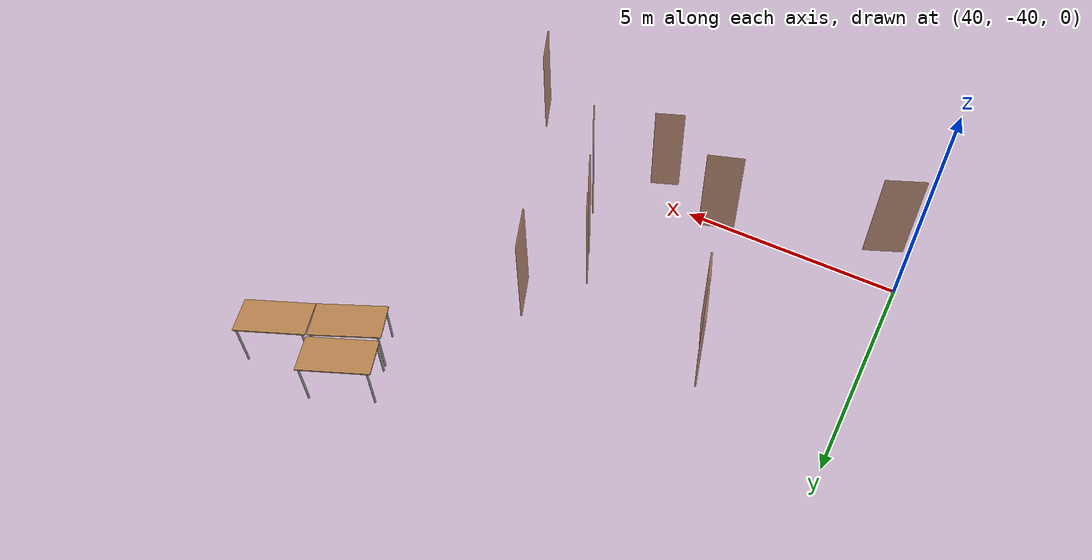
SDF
<sdf version="1.6">
 <world name="world">
  <model name="OpenRobotics/Table_3">
   <static>1</static>
   <link name="link">
    <collision name="surface">
     <pose>0 0 1 0 -0 0</pose>
     <geometry><box><size>1.5 0.8 0.03</size></box></geometry>
     <surface><friction><ode><mu>0.6</mu><mu2>0.6</mu2></ode></friction></surface>
    </collision>
    <visual name="visual1">
     <pose>0 0 1 0 -0 0</pose>
     <geometry><box><size>1.5 0.8 0.03</size></box></geometry>
     <material>
      <script><uri>file://media/materials/scripts/gazebo.material</uri><name>Gazebo/Wood</name></script>
     </material>
    </visual>
    <collision name="front_left_leg">
     <pose>0.68 0.38 0.5 0 -0 0</pose>
     <geometry><cylinder><radius>0.02</radius><length>1</length></cylinder></geometry>
    </collision>
    <visual name="front_left_leg">
     <pose>0.68 0.38 0.5 0 -0 0</pose>
     <geometry><cylinder><radius>0.02</radius><length>1</length></cylinder></geometry>
     <material>
      <script><uri>file://media/materials/scripts/gazebo.material</uri><name>Gazebo/Grey</name></script>
     </material>
    </visual>
    <collision name="front_right_leg">
     <pose>0.68 -0.38 0.5 0 -0 0</pose>
     <geometry><cylinder><radius>0.02</radius><length>1</length></cylinder></geometry>
    </collision>
    <visual name="front_right_leg">
     <pose>0.68 -0.38 0.5 0 -0 0</pose>
     <geometry><cylinder><radius>0.02</radius><length>1</length></cylinder></geometry>
     <material>
      <script><uri>file://media/materials/scripts/gazebo.material</uri><name>Gazebo/Grey</name></script>
     </material>
    </visual>
    <collision name="back_right_leg">
     <pose>-0.68 -0.38 0.5 0 -0 0</pose>
     <geometry><cylinder><radius>0.02</radius><length>1</length></cylinder></geometry>
    </collision>
    <visual name="back_right_leg">
     <pose>-0.68 -0.38 0.5 0 -0 0</pose>
     <geometry><cylinder><radius>0.02</radius><length>1</length></cylinder></geometry>
     <material>
      <script><uri>file://media/materials/scripts/gazebo.material</uri><name>Gazebo/Grey</name></script>
     </material>
    </visual>
    <collision name="back_left_leg">
     <pose>-0.68 0.38 0.5 0 -0 0</pose>
     <geometry><cylinder><radius>0.02</radius><length>1</length></cylinder></geometry>
    </collision>
    <visual name="back_left_leg">
     <pose>-0.68 0.38 0.5 0 -0 0</pose>
     <geometry><cylinder><radius>0.02</radius><length>1</length></cylinder></geometry>
     <material>
      <script><uri>file://media/materials/scripts/gazebo.material</uri><name>Gazebo/Grey</name></script>
     </material>
    </visual>
   </link>
   <pose>49.1187 -32.1514 0 0 -0 0.4303</pose>
  </model>
  <model name="OpenRobotics/Table_7">
   <static>1</static>
   <link name="link">
    <collision name="surface">
     <pose>0 0 1 0 -0 0</pose>
     <geometry><box><size>1.5 0.8 0.03</size></box></geometry>
     <surface><friction><ode><mu>0.6</mu><mu2>0.6</mu2></ode></friction></surface>
    </collision>
    <visual name="visual1">
     <pose>0 0 1 0 -0 0</pose>
     <geometry><box><size>1.5 0.8 0.03</size></box></geometry>
     <material>
      <script><uri>file://media/materials/scripts/gazebo.material</uri><name>Gazebo/Wood</name></script>
     </material>
    </visual>
    <collision name="front_left_leg">
     <pose>0.68 0.38 0.5 0 -0 0</pose>
     <geometry><cylinder><radius>0.02</radius><length>1</length></cylinder></geometry>
    </collision>
    <visual name="front_left_leg">
     <pose>0.68 0.38 0.5 0 -0 0</pose>
     <geometry><cylinder><radius>0.02</radius><length>1</length></cylinder></geometry>
     <material>
      <script><uri>file://media/materials/scripts/gazebo.material</uri><name>Gazebo/Grey</name></script>
     </material>
    </visual>
    <collision name="front_right_leg">
     <pose>0.68 -0.38 0.5 0 -0 0</pose>
     <geometry><cylinder><radius>0.02</radius><length>1</length></cylinder></geometry>
    </collision>
    <visual name="front_right_leg">
     <pose>0.68 -0.38 0.5 0 -0 0</pose>
     <geometry><cylinder><radius>0.02</radius><length>1</length></cylinder></geometry>
     <material>
      <script><uri>file://media/materials/scripts/gazebo.material</uri><name>Gazebo/Grey</name></script>
     </material>
    </visual>
    <collision name="back_right_leg">
     <pose>-0.68 -0.38 0.5 0 -0 0</pose>
     <geometry><cylinder><radius>0.02</radius><length>1</length></cylinder></geometry>
    </collision>
    <visual name="back_right_leg">
     <pose>-0.68 -0.38 0.5 0 -0 0</pose>
     <geometry><cylinder><radius>0.02</radius><length>1</length></cylinder></geometry>
     <material>
      <script><uri>file://media/materials/scripts/gazebo.material</uri><name>Gazebo/Grey</name></script>
     </material>
    </visual>
    <collision name="back_left_leg">
     <pose>-0.68 0.38 0.5 0 -0 0</pose>
     <geometry><cylinder><radius>0.02</radius><length>1</length></cylinder></geometry>
    </collision>
    <visual name="back_left_leg">
     <pose>-0.68 0.38 0.5 0 -0 0</pose>
     <geometry><cylinder><radius>0.02</radius><length>1</length></cylinder></geometry>
     <material>
      <script><uri>file://media/materials/scripts/gazebo.material</uri><name>Gazebo/Grey</name></script>
     </material>
    </visual>
   </link>
   <pose>50.8587 -32.2821 0 0 -0 0.4288</pose>
  </model>
  <model name="OpenRobotics/Table_8">
   <static>1</static>
   <link name="link">
    <collision name="surface">
     <pose>0 0 1 0 -0 0</pose>
     <geometry><box><size>1.5 0.8 0.03</size></box></geometry>
     <surface><friction><ode><mu>0.6</mu><mu2>0.6</mu2></ode></friction></surface>
    </collision>
    <visual name="visual1">
     <pose>0 0 1 0 -0 0</pose>
     <geometry><box><size>1.5 0.8 0.03</size></box></geometry>
     <material>
      <script><uri>file://media/materials/scripts/gazebo.material</uri><name>Gazebo/Wood</name></script>
     </material>
    </visual>
    <collision name="front_left_leg">
     <pose>0.68 0.38 0.5 0 -0 0</pose>
     <geometry><cylinder><radius>0.02</radius><length>1</length></cylinder></geometry>
    </collision>
    <visual name="front_left_leg">
     <pose>0.68 0.38 0.5 0 -0 0</pose>
     <geometry><cylinder><radius>0.02</radius><length>1</length></cylinder></geometry>
     <material>
      <script><uri>file://media/materials/scripts/gazebo.material</uri><name>Gazebo/Grey</name></script>
     </material>
    </visual>
    <collision name="front_right_leg">
     <pose>0.68 -0.38 0.5 0 -0 0</pose>
     <geometry><cylinder><radius>0.02</radius><length>1</length></cylinder></geometry>
    </collision>
    <visual name="front_right_leg">
     <pose>0.68 -0.38 0.5 0 -0 0</pose>
     <geometry><cylinder><radius>0.02</radius><length>1</length></cylinder></geometry>
     <material>
      <script><uri>file://media/materials/scripts/gazebo.material</uri><name>Gazebo/Grey</name></script>
     </material>
    </visual>
    <collision name="back_right_leg">
     <pose>-0.68 -0.38 0.5 0 -0 0</pose>
     <geometry><cylinder><radius>0.02</radius><length>1</length></cylinder></geometry>
    </collision>
    <visual name="back_right_leg">
     <pose>-0.68 -0.38 0.5 0 -0 0</pose>
     <geometry><cylinder><radius>0.02</radius><length>1</length></cylinder></geometry>
     <material>
      <script><uri>file://media/materials/scripts/gazebo.material</uri><name>Gazebo/Grey</name></script>
     </material>
    </visual>
    <collision name="back_left_leg">
     <pose>-0.68 0.38 0.5 0 -0 0</pose>
     <geometry><cylinder><radius>0.02</radius><length>1</length></cylinder></geometry>
    </collision>
    <visual name="back_left_leg">
     <pose>-0.68 0.38 0.5 0 -0 0</pose>
     <geometry><cylinder><radius>0.02</radius><length>1</length></cylinder></geometry>
     <material>
      <script><uri>file://media/materials/scripts/gazebo.material</uri><name>Gazebo/Grey</name></script>
     </material>
    </visual>
   </link>
   <pose>49.4808 -32.9359 0 0 -0 0.4547</pose>
  </model>
  <model name="D1">
   <pose>46.734 -38.1165 0 0 -0 -1.09898</pose>
   <link name="right">
    <pose>0 0 1.11 0 -0 0</pose>
    <visual name="right_visual">
     <geometry><box><size>0.995473 0.03 2.2</size></box></geometry>
     <material><ambient>0.5 0.25 0 0.6</ambient><diffuse>0.5 0.25 0 0.6</diffuse></material>
    </visual>
    <collision name="right_collision">
     <geometry><box><size>0.995473 0.03 2.2</size></box></geometry>
     <surface><contact><collide_bitmask>2</collide_bitmask></contact></surface>
    </collision>
    <inertial>
     <mass>50</mass>
     <inertia><ixx>20.1704</ixx><iyy>24.2957</iyy><izz>4.13277</izz><ixy>0</ixy><ixz>0</ixz><iyz>0</iyz></inertia>
    </inertial>
   </link>
   <joint name="right_joint" type="revolute">
    <parent>world</parent>
    <child>right</child>
    <axis>
     <xyz>0 0 1</xyz>
     <limit><lower>0</lower><upper>1.57</upper></limit>
     <dynamics><spring_reference>0</spring_reference><spring_stiffness>0</spring_stiffness></dynamics>
     <use_parent_model_frame>0</use_parent_model_frame>
    </axis>
    <pose>0.502736 0 0 0 -0 0</pose>
   </joint>
   <plugin name="door_D1" filename="libdoor.so">
    <v_max_door>0.5</v_max_door>
    <a_max_door>0.3</a_max_door>
    <a_nom_door>0.15</a_nom_door>
    <dx_min_door>0.01</dx_min_door>
    <f_max_door>500.0</f_max_door>
    <door name="D1" type="SwingDoor" left_joint_name="empty_joint" right_joint_name="right_joint"/>
   </plugin>
  </model>
  <model name="D2">
   <pose>40.5795 -41.0884 0 0 0 -2.71335</pose>
   <link name="right">
    <pose>0 0 1.11 0 -0 0</pose>
    <visual name="right_visual">
     <geometry><box><size>0.922305 0.03 2.2</size></box></geometry>
     <material><ambient>0.5 0.25 0 0.6</ambient><diffuse>0.5 0.25 0 0.6</diffuse></material>
    </visual>
    <collision name="right_collision">
     <geometry><box><size>0.922305 0.03 2.2</size></box></geometry>
     <surface><contact><collide_bitmask>2</collide_bitmask></contact></surface>
    </collision>
    <inertial>
     <mass>50</mass>
     <inertia><ixx>20.1704</ixx><iyy>23.711</iyy><izz>3.54811</izz><ixy>0</ixy><ixz>0</ixz><iyz>0</iyz></inertia>
    </inertial>
   </link>
   <joint name="right_joint" type="revolute">
    <parent>world</parent>
    <child>right</child>
    <axis>
     <xyz>0 0 1</xyz>
     <limit><lower>0</lower><upper>1.57</upper></limit>
     <dynamics><spring_reference>0</spring_reference><spring_stiffness>0</spring_stiffness></dynamics>
     <use_parent_model_frame>0</use_parent_model_frame>
    </axis>
    <pose>0.466153 0 0 0 -0 0</pose>
   </joint>
   <plugin name="door_D2" filename="libdoor.so">
    <v_max_door>0.5</v_max_door>
    <a_max_door>0.3</a_max_door>
    <a_nom_door>0.15</a_nom_door>
    <dx_min_door>0.01</dx_min_door>
    <f_max_door>500.0</f_max_door>
    <door name="D2" type="SwingDoor" left_joint_name="empty_joint" right_joint_name="right_joint"/>
   </plugin>
  </model>
  <model name="D3">
   <pose>44.2806 -39.9356 -0 0 0 -2.80852</pose>
   <link name="right">
    <pose>0 0 1.11 0 -0 0</pose>
    <visual name="right_visual">
     <geometry><box><size>0.838853 0.03 2.2</size></box></geometry>
     <material><ambient>0.5 0.25 0 0.6</ambient><diffuse>0.5 0.25 0 0.6</diffuse></material>
    </visual>
    <collision name="right_collision">
     <geometry><box><size>0.838853 0.03 2.2</size></box></geometry>
     <surface><contact><collide_bitmask>2</collide_bitmask></contact></surface>
    </collision>
    <inertial>
     <mass>50</mass>
     <inertia><ixx>20.1704</ixx><iyy>23.0986</iyy><izz>2.93572</izz><ixy>0</ixy><ixz>0</ixz><iyz>0</iyz></inertia>
    </inertial>
   </link>
   <joint name="right_joint" type="revolute">
    <parent>world</parent>
    <child>right</child>
    <axis>
     <xyz>0 0 1</xyz>
     <limit><lower>0</lower><upper>1.57</upper></limit>
     <dynamics><spring_reference>0</spring_reference><spring_stiffness>0</spring_stiffness></dynamics>
     <use_parent_model_frame>0</use_parent_model_frame>
    </axis>
    <pose>0.424426 0 0 0 -0 0</pose>
   </joint>
   <plugin name="door_D3" filename="libdoor.so">
    <v_max_door>0.5</v_max_door>
    <a_max_door>0.3</a_max_door>
    <a_nom_door>0.15</a_nom_door>
    <dx_min_door>0.01</dx_min_door>
    <f_max_door>500.0</f_max_door>
    <door name="D3" type="SwingDoor" left_joint_name="empty_joint" right_joint_name="right_joint"/>
   </plugin>
  </model>
  <model name="D4">
   <pose>46.2677 -37.1758 -0 0 0 -1.0969</pose>
   <link name="right">
    <pose>0 0 1.11 0 -0 0</pose>
    <visual name="right_visual">
     <geometry><box><size>0.672919 0.03 2.2</size></box></geometry>
     <material><ambient>0.5 0.25 0 0.6</ambient><diffuse>0.5 0.25 0 0.6</diffuse></material>
    </visual>
    <collision name="right_collision">
     <geometry><box><size>0.672919 0.03 2.2</size></box></geometry>
     <surface><contact><collide_bitmask>2</collide_bitmask></contact></surface>
    </collision>
    <inertial>
     <mass>50</mass>
     <inertia><ixx>20.1704</ixx><iyy>22.0534</iyy><izz>1.8905</izz><ixy>0</ixy><ixz>0</ixz><iyz>0</iyz></inertia>
    </inertial>
   </link>
   <joint name="right_joint" type="revolute">
    <parent>world</parent>
    <child>right</child>
    <axis>
     <xyz>0 0 1</xyz>
     <limit><lower>0</lower><upper>1.57</upper></limit>
     <dynamics><spring_reference>0</spring_reference><spring_stiffness>0</spring_stiffness></dynamics>
     <use_parent_model_frame>0</use_parent_model_frame>
    </axis>
    <pose>0.34146 0 0 0 -0 0</pose>
   </joint>
   <plugin name="door_D4" filename="libdoor.so">
    <v_max_door>0.5</v_max_door>
    <a_max_door>0.3</a_max_door>
    <a_nom_door>0.15</a_nom_door>
    <dx_min_door>0.01</dx_min_door>
    <f_max_door>500.0</f_max_door>
    <door name="D4" type="SwingDoor" left_joint_name="empty_joint" right_joint_name="right_joint"/>
   </plugin>
  </model>
  <model name="D5">
   <pose>47.1461 -35.8918 0 0 -0 -1.15391</pose>
   <link name="right">
    <pose>0 0 1.11 0 -0 0</pose>
    <visual name="right_visual">
     <geometry><box><size>1.10714 0.03 2.2</size></box></geometry>
     <material><ambient>0.5 0.25 0 0.6</ambient><diffuse>0.5 0.25 0 0.6</diffuse></material>
    </visual>
    <collision name="right_collision">
     <geometry><box><size>1.10714 0.03 2.2</size></box></geometry>
     <surface><contact><collide_bitmask>2</collide_bitmask></contact></surface>
    </collision>
    <inertial>
     <mass>50</mass>
     <inertia><ixx>20.1704</ixx><iyy>25.274</iyy><izz>5.11105</izz><ixy>0</ixy><ixz>0</ixz><iyz>0</iyz></inertia>
    </inertial>
   </link>
   <joint name="right_joint" type="revolute">
    <parent>world</parent>
    <child>right</child>
    <axis>
     <xyz>0 0 -1</xyz>
     <limit><lower>0</lower><upper>1.57</upper></limit>
     <dynamics><spring_reference>0</spring_reference><spring_stiffness>0</spring_stiffness></dynamics>
     <use_parent_model_frame>0</use_parent_model_frame>
    </axis>
    <pose>0.558568 0 0 0 -0 0</pose>
   </joint>
   <plugin name="door_D5" filename="libdoor.so">
    <v_max_door>0.5</v_max_door>
    <a_max_door>0.3</a_max_door>
    <a_nom_door>0.15</a_nom_door>
    <dx_min_door>0.01</dx_min_door>
    <f_max_door>500.0</f_max_door>
    <door name="D5" type="SwingDoor" left_joint_name="empty_joint" right_joint_name="right_joint"/>
   </plugin>
  </model>
  <model name="D6">
   <pose>49.9364 -41.6614 -0 0 -0 -1.13197</pose>
   <link name="right">
    <pose>0 0 1.11 0 -0 0</pose>
    <visual name="right_visual">
     <geometry><box><size>1.18487 0.03 2.2</size></box></geometry>
     <material><ambient>0.5 0.25 0 0.6</ambient><diffuse>0.5 0.25 0 0.6</diffuse></material>
    </visual>
    <collision name="right_collision">
     <geometry><box><size>1.18487 0.03 2.2</size></box></geometry>
     <surface><contact><collide_bitmask>2</collide_bitmask></contact></surface>
    </collision>
    <inertial>
     <mass>50</mass>
     <inertia><ixx>20.1704</ixx><iyy>26.0163</iyy><izz>5.85339</izz><ixy>0</ixy><ixz>0</ixz><iyz>0</iyz></inertia>
    </inertial>
   </link>
   <joint name="right_joint" type="revolute">
    <parent>world</parent>
    <child>right</child>
    <axis>
     <xyz>0 0 -1</xyz>
     <limit><lower>0</lower><upper>1.57</upper></limit>
     <dynamics><spring_reference>0</spring_reference><spring_stiffness>0</spring_stiffness></dynamics>
     <use_parent_model_frame>0</use_parent_model_frame>
    </axis>
    <pose>0.597435 0 0 0 -0 0</pose>
   </joint>
   <plugin name="door_D6" filename="libdoor.so">
    <v_max_door>0.5</v_max_door>
    <a_max_door>0.3</a_max_door>
    <a_nom_door>0.15</a_nom_door>
    <dx_min_door>0.01</dx_min_door>
    <f_max_door>500.0</f_max_door>
    <door name="D6" type="SwingDoor" left_joint_name="empty_joint" right_joint_name="right_joint"/>
   </plugin>
  </model>
  <model name="D10">
   <pose>47.3834 -39.5003 -0 -0 -0 -1.07964</pose>
   <link name="right">
    <pose>0 0 1.11 0 -0 0</pose>
    <visual name="right_visual">
     <geometry><box><size>1.38727 0.03 2.2</size></box></geometry>
     <material><ambient>0.5 0.25 0 0.6</ambient><diffuse>0.5 0.25 0 0.6</diffuse></material>
    </visual>
    <collision name="right_collision">
     <geometry><box><size>1.38727 0.03 2.2</size></box></geometry>
     <surface><contact><collide_bitmask>2</collide_bitmask></contact></surface>
    </collision>
    <inertial>
     <mass>50</mass>
     <inertia><ixx>20.1704</ixx><iyy>28.1855</iyy><izz>8.02261</izz><ixy>0</ixy><ixz>0</ixz><iyz>0</iyz></inertia>
    </inertial>
   </link>
   <joint name="right_joint" type="revolute">
    <parent>world</parent>
    <child>right</child>
    <axis>
     <xyz>0 0 1</xyz>
     <limit><lower>0</lower><upper>1.57</upper></limit>
     <dynamics><spring_reference>0</spring_reference><spring_stiffness>0</spring_stiffness></dynamics>
     <use_parent_model_frame>0</use_parent_model_frame>
    </axis>
    <pose>0.698637 0 0 0 -0 0</pose>
   </joint>
   <plugin name="door_D10" filename="libdoor.so">
    <v_max_door>0.5</v_max_door>
    <a_max_door>0.3</a_max_door>
    <a_nom_door>0.15</a_nom_door>
    <dx_min_door>0.01</dx_min_door>
    <f_max_door>500.0</f_max_door>
    <door name="D10" type="SwingDoor" left_joint_name="empty_joint" right_joint_name="right_joint"/>
   </plugin>
  </model>
  <model name="D11">
   <pose>45.9919 -40.6742 0 0 -0 0.393065</pose>
   <link name="right">
    <pose>0 0 1.11 0 -0 0</pose>
    <visual name="right_visual">
     <geometry><box><size>0.692377 0.03 2.2</size></box></geometry>
     <material><ambient>0.5 0.25 0 0.6</ambient><diffuse>0.5 0.25 0 0.6</diffuse></material>
    </visual>
    <collision name="right_collision">
     <geometry><box><size>0.692377 0.03 2.2</size></box></geometry>
     <surface><contact><collide_bitmask>2</collide_bitmask></contact></surface>
    </collision>
    <inertial>
     <mass>50</mass>
     <inertia><ixx>20.1704</ixx><iyy>22.1641</iyy><izz>2.00119</izz><ixy>0</ixy><ixz>0</ixz><iyz>0</iyz></inertia>
    </inertial>
   </link>
   <joint name="right_joint" type="revolute">
    <parent>world</parent>
    <child>right</child>
    <axis>
     <xyz>0 0 1</xyz>
     <limit><lower>0</lower><upper>1.57</upper></limit>
     <dynamics><spring_reference>0</spring_reference><spring_stiffness>0</spring_stiffness></dynamics>
     <use_parent_model_frame>0</use_parent_model_frame>
    </axis>
    <pose>0.351189 0 0 0 -0 0</pose>
   </joint>
   <plugin name="door_D11" filename="libdoor.so">
    <v_max_door>0.5</v_max_door>
    <a_max_door>0.3</a_max_door>
    <a_nom_door>0.15</a_nom_door>
    <dx_min_door>0.01</dx_min_door>
    <f_max_door>500.0</f_max_door>
    <door name="D11" type="SwingDoor" left_joint_name="empty_joint" right_joint_name="right_joint"/>
   </plugin>
  </model>
  <model name="D23">
   <pose>43.3133 -36.8664 0 0 -0 -1.20842</pose>
   <link name="right">
    <pose>0 0 1.11 0 -0 0</pose>
    <visual name="right_visual">
     <geometry><box><size>0.675024 0.03 2.2</size></box></geometry>
     <material><ambient>0.5 0.25 0 0.6</ambient><diffuse>0.5 0.25 0 0.6</diffuse></material>
    </visual>
    <collision name="right_collision">
     <geometry><box><size>0.675024 0.03 2.2</size></box></geometry>
     <surface><contact><collide_bitmask>2</collide_bitmask></contact></surface>
    </collision>
    <inertial>
     <mass>50</mass>
     <inertia><ixx>20.1704</ixx><iyy>22.0652</iyy><izz>1.90232</izz><ixy>0</ixy><ixz>0</ixz><iyz>0</iyz></inertia>
    </inertial>
   </link>
   <joint name="right_joint" type="revolute">
    <parent>world</parent>
    <child>right</child>
    <axis>
     <xyz>0 0 1</xyz>
     <limit><lower>0</lower><upper>1.57</upper></limit>
     <dynamics><spring_reference>0</spring_reference><spring_stiffness>0</spring_stiffness></dynamics>
     <use_parent_model_frame>0</use_parent_model_frame>
    </axis>
    <pose>0.342512 0 0 0 -0 0</pose>
   </joint>
   <plugin name="door_D23" filename="libdoor.so">
    <v_max_door>0.5</v_max_door>
    <a_max_door>0.3</a_max_door>
    <a_nom_door>0.15</a_nom_door>
    <dx_min_door>0.01</dx_min_door>
    <f_max_door>500.0</f_max_door>
    <door name="D23" type="SwingDoor" left_joint_name="empty_joint" right_joint_name="right_joint"/>
   </plugin>
  </model>
  <model name="D24">
   <pose>42.9771 -35.9117 0 0 0 -1.2416</pose>
   <link name="right">
    <pose>0 0 1.11 0 -0 0</pose>
    <visual name="right_visual">
     <geometry><box><size>0.780097 0.03 2.2</size></box></geometry>
     <material><ambient>0.5 0.25 0 0.6</ambient><diffuse>0.5 0.25 0 0.6</diffuse></material>
    </visual>
    <collision name="right_collision">
     <geometry><box><size>0.780097 0.03 2.2</size></box></geometry>
     <surface><contact><collide_bitmask>2</collide_bitmask></contact></surface>
    </collision>
    <inertial>
     <mass>50</mass>
     <inertia><ixx>20.1704</ixx><iyy>22.7023</iyy><izz>2.53938</izz><ixy>0</ixy><ixz>0</ixz><iyz>0</iyz></inertia>
    </inertial>
   </link>
   <joint name="right_joint" type="revolute">
    <parent>world</parent>
    <child>right</child>
    <axis>
     <xyz>0 0 1</xyz>
     <limit><lower>0</lower><upper>1.57</upper></limit>
     <dynamics><spring_reference>0</spring_reference><spring_stiffness>0</spring_stiffness></dynamics>
     <use_parent_model_frame>0</use_parent_model_frame>
    </axis>
    <pose>0.395048 0 0 0 -0 0</pose>
   </joint>
   <plugin name="door_D24" filename="libdoor.so">
    <v_max_door>0.5</v_max_door>
    <a_max_door>0.3</a_max_door>
    <a_nom_door>0.15</a_nom_door>
    <dx_min_door>0.01</dx_min_door>
    <f_max_door>500.0</f_max_door>
    <door name="D24" type="SwingDoor" left_joint_name="empty_joint" right_joint_name="right_joint"/>
   </plugin>
  </model>
 </world>
</sdf>
